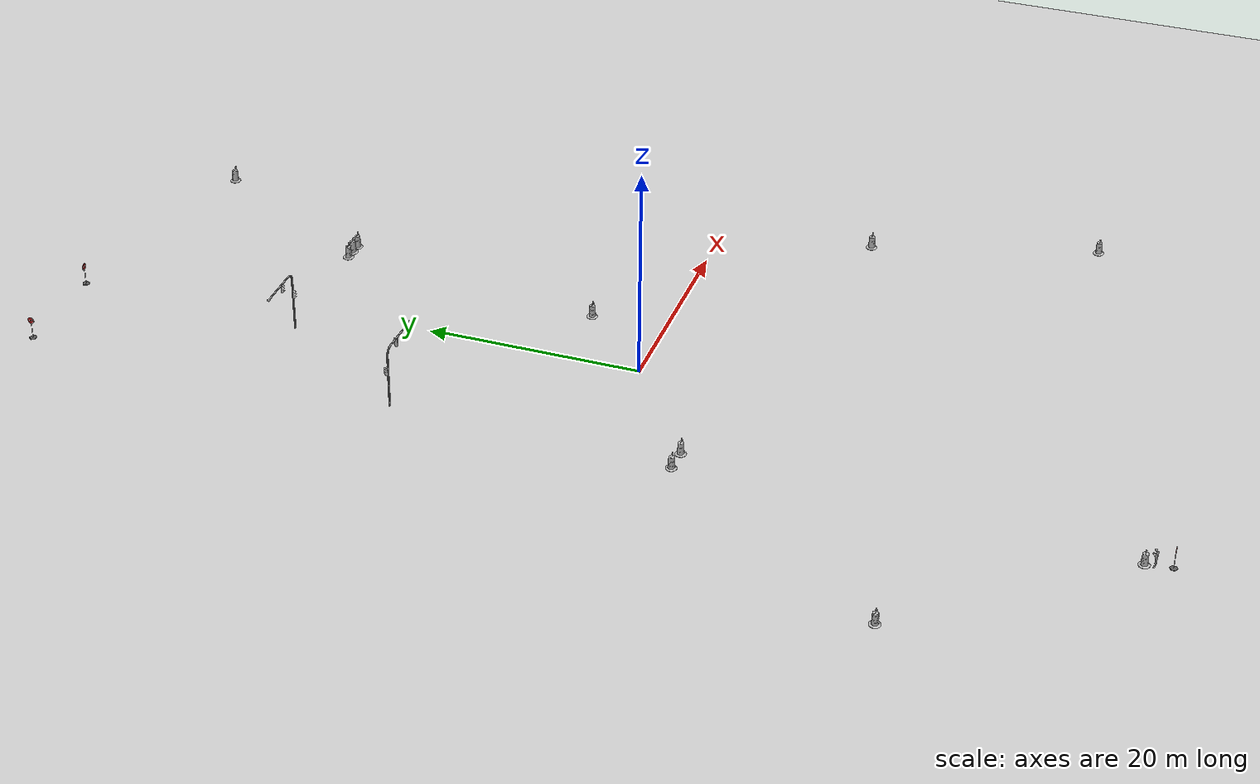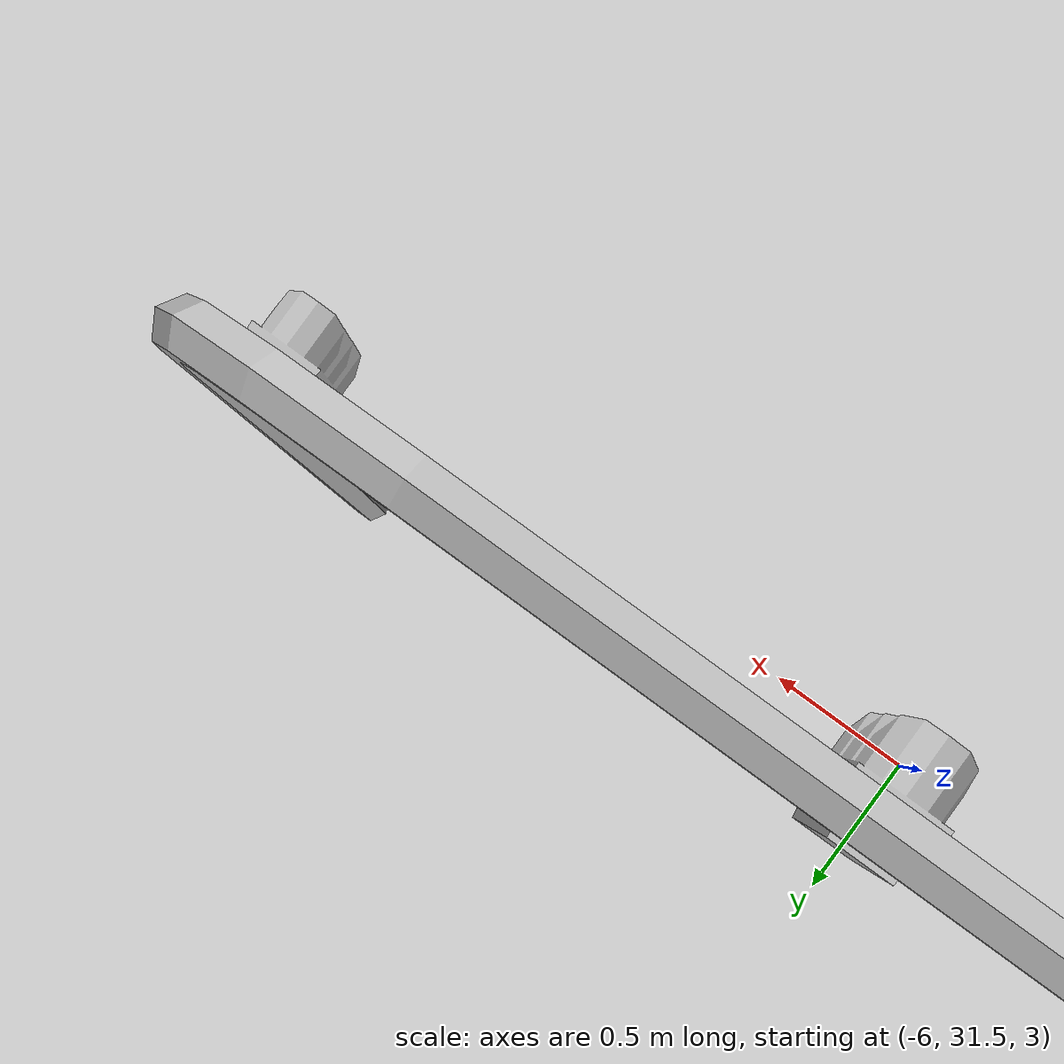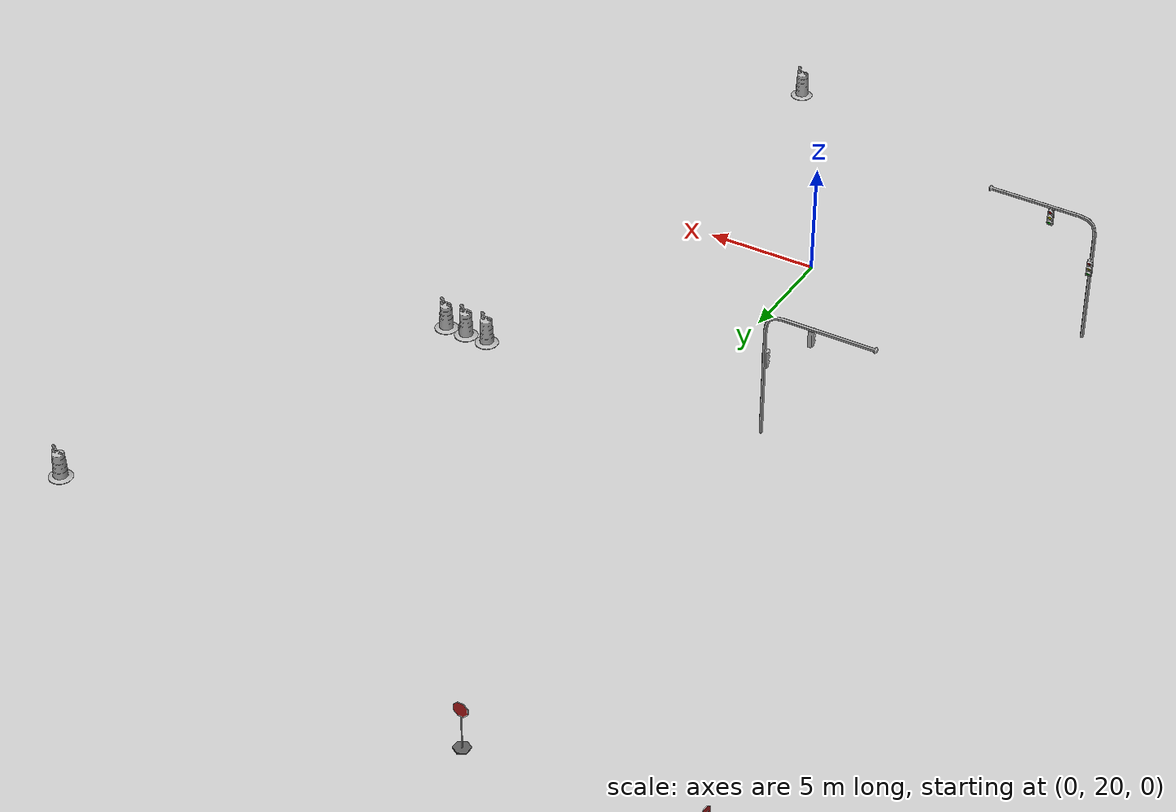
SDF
<sdf version="1.7">
 <world name="self_drive_v1">
  <physics type="ode">
   <max_step_size>0.00625</max_step_size>
   <real_time_factor>1</real_time_factor>
   <real_time_update_rate>160</real_time_update_rate>
  </physics>
  <light name="user_directional_light_0" type="directional">
   <pose>0 -60 1 1 -0 0</pose>
   <diffuse>0.5 0.5 0.5 1</diffuse>
   <specular>0.1 0.1 0.1 1</specular>
   <direction>0.1 0.1 -0.9</direction>
   <attenuation>
    <range>20</range>
    <constant>0.5</constant>
    <linear>0.01</linear>
    <quadratic>0.001</quadratic>
   </attenuation>
   <spot><inner_angle>0</inner_angle><outer_angle>0</outer_angle><falloff>0</falloff></spot>
  </light>
  <light name="user_directional_light_1" type="directional">
   <pose>40 0 1 -1.68478 -0.346199 -2.21355</pose>
   <diffuse>0.5 0.5 0.5 1</diffuse>
   <specular>0.1 0.1 0.1 1</specular>
   <direction>0.1 0.1 -0.9</direction>
   <attenuation>
    <range>20</range>
    <constant>0.5</constant>
    <linear>0.01</linear>
    <quadratic>0.001</quadratic>
   </attenuation>
   <spot><inner_angle>0</inner_angle><outer_angle>0</outer_angle><falloff>0</falloff></spot>
  </light>
  <light name="user_directional_light_2" type="directional">
   <pose>0 68 1 -2.05749 0 0</pose>
   <diffuse>0.5 0.5 0.5 1</diffuse>
   <specular>0.1 0.1 0.1 1</specular>
   <direction>0.1 0.1 -0.9</direction>
   <attenuation>
    <range>20</range>
    <constant>0.5</constant>
    <linear>0.01</linear>
    <quadratic>0.001</quadratic>
   </attenuation>
   <spot><inner_angle>0</inner_angle><outer_angle>0</outer_angle><falloff>0</falloff></spot>
  </light>
  <light name="user_directional_light_3" type="directional">
   <pose>-43 0 1 0 -1.44116 0</pose>
   <diffuse>0.5 0.5 0.5 1</diffuse>
   <specular>0.1 0.1 0.1 1</specular>
   <direction>0.1 0.1 -0.9</direction>
   <attenuation>
    <range>20</range>
    <constant>0.5</constant>
    <linear>0.01</linear>
    <quadratic>0.001</quadratic>
   </attenuation>
   <spot><inner_angle>0</inner_angle><outer_angle>0</outer_angle><falloff>0</falloff></spot>
  </light>
  <scene>
   <sky><clouds><speed>12</speed></clouds></sky>
   <shadows>0</shadows>
   <ambient>0.2 0.2 0.2 1</ambient>
   <background>1 1 1 1</background>
   <grid>0</grid>
   <origin_visual>0</origin_visual>
  </scene>
  <light name="sun" type="directional">
   <pose>0 0 10 0 -0 0</pose>
   <diffuse>0.8 0.8 0.8 1</diffuse>
   <specular>0.2 0.2 0.2 1</specular>
   <attenuation>
    <range>1000</range>
    <constant>0.9</constant>
    <linear>0.01</linear>
    <quadratic>0.001</quadratic>
   </attenuation>
   <direction>-0.5 0.1 -0.9</direction>
   <spot><inner_angle>0</inner_angle><outer_angle>0</outer_angle><falloff>0</falloff></spot>
  </light>
  <model name="igvc_ground">
   <static>1</static>
   <link name="link">
    <collision name="collision">
     <geometry><plane><normal>0 0 1</normal><size>80 128</size></plane></geometry>
     <surface><friction><ode><mu>140</mu><mu2>140</mu2></ode></friction></surface>
    </collision>
    <visual name="visual">
     <cast_shadows>0</cast_shadows>
     <geometry><plane><normal>0 0 1</normal><size>80 128</size></plane></geometry>
     <material>
      <script>
       <uri>model://igvc_ground/materials/scripts</uri>
       <uri>model://igvc_ground/materials/textures</uri>
       <name>asphalt_ground/Image</name>
      </script>
     </material>
    </visual>
   </link>
   <pose>0 0.5 0 0 -0 0</pose>
  </model>
  <gravity>0 0 -9.8</gravity>
  <magnetic_field>6e-06 2.3e-05 -4.2e-05</magnetic_field>
  <atmosphere type="adiabatic"/>
  <audio><device>default</device></audio>
  <spherical_coordinates>
   <surface_model>EARTH_WGS84</surface_model>
   <latitude_deg>0</latitude_deg>
   <longitude_deg>0</longitude_deg>
   <elevation>0</elevation>
   <heading_deg>0</heading_deg>
  </spherical_coordinates>
  <light name="user_spot_light_0" type="spot">
   <pose>13.4886 -23.1413 1 0 -0 0</pose>
   <diffuse>0.5 0.5 0.5 1</diffuse>
   <specular>0.1 0.1 0.1 1</specular>
   <direction>0 0 -1</direction>
   <attenuation>
    <range>20</range>
    <constant>0.5</constant>
    <linear>0.01</linear>
    <quadratic>0.001</quadratic>
   </attenuation>
   <cast_shadows>0</cast_shadows>
   <spot><inner_angle>0.6</inner_angle><outer_angle>1</outer_angle><falloff>1</falloff></spot>
  </light>
  <light name="user_spot_light_1" type="spot">
   <pose>13.6885 -42.0524 1 0 -0 0</pose>
   <diffuse>0.5 0.5 0.5 1</diffuse>
   <specular>0.1 0.1 0.1 1</specular>
   <direction>0 0 -1</direction>
   <attenuation>
    <range>20</range>
    <constant>0.5</constant>
    <linear>0.01</linear>
    <quadratic>0.001</quadratic>
   </attenuation>
   <cast_shadows>0</cast_shadows>
   <spot><inner_angle>0.6</inner_angle><outer_angle>1</outer_angle><falloff>1</falloff></spot>
  </light>
  <light name="user_spot_light_2" type="spot">
   <pose>-30.6538 -41.3002 1 0 -0 0</pose>
   <diffuse>0.5 0.5 0.5 1</diffuse>
   <specular>0.1 0.1 0.1 1</specular>
   <direction>0 0 -1</direction>
   <attenuation>
    <range>20</range>
    <constant>0.5</constant>
    <linear>0.01</linear>
    <quadratic>0.001</quadratic>
   </attenuation>
   <cast_shadows>0</cast_shadows>
   <spot><inner_angle>0.6</inner_angle><outer_angle>1</outer_angle><falloff>1</falloff></spot>
  </light>
  <light name="user_spot_light_3" type="spot">
   <pose>-26.8193 29.1852 1 0 -0 0</pose>
   <diffuse>0.5 0.5 0.5 1</diffuse>
   <specular>0.1 0.1 0.1 1</specular>
   <direction>0 0 -1</direction>
   <attenuation>
    <range>20</range>
    <constant>0.5</constant>
    <linear>0.01</linear>
    <quadratic>0.001</quadratic>
   </attenuation>
   <cast_shadows>0</cast_shadows>
   <spot><inner_angle>0.6</inner_angle><outer_angle>1</outer_angle><falloff>1</falloff></spot>
  </light>
  <light name="user_spot_light_4" type="spot">
   <pose>-30.5626 46.14 1 0 -0 0</pose>
   <diffuse>0.5 0.5 0.5 1</diffuse>
   <specular>0.1 0.1 0.1 1</specular>
   <direction>0 0 -1</direction>
   <attenuation>
    <range>20</range>
    <constant>0.5</constant>
    <linear>0.01</linear>
    <quadratic>0.001</quadratic>
   </attenuation>
   <cast_shadows>0</cast_shadows>
   <spot><inner_angle>0.6</inner_angle><outer_angle>1</outer_angle><falloff>1</falloff></spot>
  </light>
  <light name="user_spot_light_5" type="spot">
   <pose>13.3544 48.592 1 0 -0 0</pose>
   <diffuse>0.5 0.5 0.5 1</diffuse>
   <specular>0.1 0.1 0.1 1</specular>
   <direction>0 0 -1</direction>
   <attenuation>
    <range>20</range>
    <constant>0.5</constant>
    <linear>0.01</linear>
    <quadratic>0.001</quadratic>
   </attenuation>
   <cast_shadows>0</cast_shadows>
   <spot><inner_angle>0.6</inner_angle><outer_angle>1</outer_angle><falloff>1</falloff></spot>
  </light>
  <light name="user_spot_light_6" type="spot">
   <pose>10.0557 6.76251 1 0 -0 0</pose>
   <diffuse>0.5 0.5 0.5 1</diffuse>
   <specular>0.1 0.1 0.1 1</specular>
   <direction>0 0 -1</direction>
   <attenuation>
    <range>20</range>
    <constant>0.5</constant>
    <linear>0.01</linear>
    <quadratic>0.001</quadratic>
   </attenuation>
   <cast_shadows>0</cast_shadows>
   <spot><inner_angle>0.6</inner_angle><outer_angle>1</outer_angle><falloff>1</falloff></spot>
  </light>
  <model name="stop_light_post">
   <static>1</static>
   <link name="link">
    <collision name="post">
     <geometry>
      <mesh><uri>model://stop_light_post/meshes/stop_light_post.obj</uri><scale>0.01 0.01 0.01</scale></mesh>
     </geometry>
    </collision>
    <visual name="post">
     <geometry>
      <mesh><uri>model://stop_light_post/meshes/stop_light_post.obj</uri><scale>0.01 0.01 0.01</scale></mesh>
     </geometry>
    </visual>
   </link>
   <frame name="right_light::__model__" attached_to="right_light::link">
    <pose relative_to="__model__">0 -0.05 4 0 -0 0</pose>
   </frame>
   <static>1</static>
   <link name="right_light::link">
    <collision name="collision">
     <geometry>
      <mesh><uri>model://stop_light/meshes/stop_light.obj</uri><scale>0.01 0.01 0.01</scale></mesh>
     </geometry>
    </collision>
    <visual name="frame">
     <geometry>
      <mesh><uri>model://stop_light/meshes/stop_light.obj</uri><scale>0.01 0.01 0.01</scale></mesh>
     </geometry>
    </visual>
    <visual name="red">
     <pose>-0.001123 -0.082251 -0.147514 0 -0 0</pose>
     <geometry><sphere><radius>0.1012</radius></sphere></geometry>
     <material>
      <script>
       <uri>model://stop_light/materials/scripts/</uri>
       <uri>model://stop_light/materials/textures/</uri>
       <name>StopLight/Light</name>
      </script>
      <ambient>1 0 0 1</ambient>
      <specular>1 0 0 1</specular>
     </material>
    </visual>
    <visual name="yellow">
     <pose>-0.001123 -0.082251 -0.402 0 -0 0</pose>
     <geometry><sphere><radius>0.1012</radius></sphere></geometry>
     <material>
      <script>
       <uri>model://stop_light/materials/scripts/</uri>
       <uri>model://stop_light/materials/textures/</uri>
       <name>StopLight/Light</name>
      </script>
      <ambient>1 1 0 1</ambient>
      <specular>1 1 0 1</specular>
     </material>
    </visual>
    <visual name="green">
     <pose>-0.001123 -0.082251 -0.655 0 -0 0</pose>
     <geometry><sphere><radius>0.1012</radius></sphere></geometry>
     <material>
      <script>
       <uri>model://stop_light/materials/scripts/</uri>
       <uri>model://stop_light/materials/textures/</uri>
       <name>StopLight/Light</name>
      </script>
      <ambient>0 1 0 1</ambient>
      <specular>0 1 0 1</specular>
     </material>
    </visual>
    <pose relative_to="right_light::__model__">0 0 0 0 -0 0</pose>
   </link>
   <frame name="center_light::__model__" attached_to="center_light::link">
    <pose relative_to="__model__">-2 0.04 5.82 0 -0 0</pose>
   </frame>
   <static>1</static>
   <link name="center_light::link">
    <collision name="collision">
     <geometry>
      <mesh><uri>model://stop_light/meshes/stop_light.obj</uri><scale>0.01 0.01 0.01</scale></mesh>
     </geometry>
    </collision>
    <visual name="frame">
     <geometry>
      <mesh><uri>model://stop_light/meshes/stop_light.obj</uri><scale>0.01 0.01 0.01</scale></mesh>
     </geometry>
    </visual>
    <visual name="red">
     <pose>-0.001123 -0.082251 -0.147514 0 -0 0</pose>
     <geometry><sphere><radius>0.1012</radius></sphere></geometry>
     <material>
      <script>
       <uri>model://stop_light/materials/scripts/</uri>
       <uri>model://stop_light/materials/textures/</uri>
       <name>StopLight/Light</name>
      </script>
      <ambient>1 0 0 1</ambient>
      <specular>1 0 0 1</specular>
     </material>
    </visual>
    <visual name="yellow">
     <pose>-0.001123 -0.082251 -0.402 0 -0 0</pose>
     <geometry><sphere><radius>0.1012</radius></sphere></geometry>
     <material>
      <script>
       <uri>model://stop_light/materials/scripts/</uri>
       <uri>model://stop_light/materials/textures/</uri>
       <name>StopLight/Light</name>
      </script>
      <ambient>1 1 0 1</ambient>
      <specular>1 1 0 1</specular>
     </material>
    </visual>
    <visual name="green">
     <pose>-0.001123 -0.082251 -0.655 0 -0 0</pose>
     <geometry><sphere><radius>0.1012</radius></sphere></geometry>
     <material>
      <script>
       <uri>model://stop_light/materials/scripts/</uri>
       <uri>model://stop_light/materials/textures/</uri>
       <name>StopLight/Light</name>
      </script>
      <ambient>0 1 0 1</ambient>
      <specular>0 1 0 1</specular>
     </material>
    </visual>
    <pose relative_to="center_light::__model__">0 0 0 0 -0 0</pose>
   </link>
   <pose>-3.66889 31.7915 0 0 -0 0</pose>
  </model>
  <model name="stop_light_post_0">
   <static>1</static>
   <link name="link">
    <collision name="post">
     <geometry>
      <mesh><uri>model://stop_light_post/meshes/stop_light_post.obj</uri><scale>0.01 0.01 0.01</scale></mesh>
     </geometry>
    </collision>
    <visual name="post">
     <geometry>
      <mesh><uri>model://stop_light_post/meshes/stop_light_post.obj</uri><scale>0.01 0.01 0.01</scale></mesh>
     </geometry>
    </visual>
   </link>
   <frame name="right_light::__model__" attached_to="right_light::link">
    <pose relative_to="__model__">0 -0.05 4 0 -0 0</pose>
   </frame>
   <static>1</static>
   <link name="right_light::link">
    <collision name="collision">
     <geometry>
      <mesh><uri>model://stop_light/meshes/stop_light.obj</uri><scale>0.01 0.01 0.01</scale></mesh>
     </geometry>
    </collision>
    <visual name="frame">
     <geometry>
      <mesh><uri>model://stop_light/meshes/stop_light.obj</uri><scale>0.01 0.01 0.01</scale></mesh>
     </geometry>
    </visual>
    <visual name="red">
     <pose>-0.001123 -0.082251 -0.147514 0 -0 0</pose>
     <geometry><sphere><radius>0.1012</radius></sphere></geometry>
     <material>
      <script>
       <uri>model://stop_light/materials/scripts/</uri>
       <uri>model://stop_light/materials/textures/</uri>
       <name>StopLight/Light</name>
      </script>
      <ambient>1 0 0 1</ambient>
      <specular>1 0 0 1</specular>
     </material>
    </visual>
    <visual name="yellow">
     <pose>-0.001123 -0.082251 -0.402 0 -0 0</pose>
     <geometry><sphere><radius>0.1012</radius></sphere></geometry>
     <material>
      <script>
       <uri>model://stop_light/materials/scripts/</uri>
       <uri>model://stop_light/materials/textures/</uri>
       <name>StopLight/Light</name>
      </script>
      <ambient>1 1 0 1</ambient>
      <specular>1 1 0 1</specular>
     </material>
    </visual>
    <visual name="green">
     <pose>-0.001123 -0.082251 -0.655 0 -0 0</pose>
     <geometry><sphere><radius>0.1012</radius></sphere></geometry>
     <material>
      <script>
       <uri>model://stop_light/materials/scripts/</uri>
       <uri>model://stop_light/materials/textures/</uri>
       <name>StopLight/Light</name>
      </script>
      <ambient>0 1 0 1</ambient>
      <specular>0 1 0 1</specular>
     </material>
    </visual>
    <pose relative_to="right_light::__model__">0 0 0 0 -0 0</pose>
   </link>
   <frame name="center_light::__model__" attached_to="center_light::link">
    <pose relative_to="__model__">-2 0.04 5.82 0 -0 0</pose>
   </frame>
   <static>1</static>
   <link name="center_light::link">
    <collision name="collision">
     <geometry>
      <mesh><uri>model://stop_light/meshes/stop_light.obj</uri><scale>0.01 0.01 0.01</scale></mesh>
     </geometry>
    </collision>
    <visual name="frame">
     <geometry>
      <mesh><uri>model://stop_light/meshes/stop_light.obj</uri><scale>0.01 0.01 0.01</scale></mesh>
     </geometry>
    </visual>
    <visual name="red">
     <pose>-0.001123 -0.082251 -0.147514 0 -0 0</pose>
     <geometry><sphere><radius>0.1012</radius></sphere></geometry>
     <material>
      <script>
       <uri>model://stop_light/materials/scripts/</uri>
       <uri>model://stop_light/materials/textures/</uri>
       <name>StopLight/Light</name>
      </script>
      <ambient>1 0 0 1</ambient>
      <specular>1 0 0 1</specular>
     </material>
    </visual>
    <visual name="yellow">
     <pose>-0.001123 -0.082251 -0.402 0 -0 0</pose>
     <geometry><sphere><radius>0.1012</radius></sphere></geometry>
     <material>
      <script>
       <uri>model://stop_light/materials/scripts/</uri>
       <uri>model://stop_light/materials/textures/</uri>
       <name>StopLight/Light</name>
      </script>
      <ambient>1 1 0 1</ambient>
      <specular>1 1 0 1</specular>
     </material>
    </visual>
    <visual name="green">
     <pose>-0.001123 -0.082251 -0.655 0 -0 0</pose>
     <geometry><sphere><radius>0.1012</radius></sphere></geometry>
     <material>
      <script>
       <uri>model://stop_light/materials/scripts/</uri>
       <uri>model://stop_light/materials/textures/</uri>
       <name>StopLight/Light</name>
      </script>
      <ambient>0 1 0 1</ambient>
      <specular>0 1 0 1</specular>
     </material>
    </visual>
    <pose relative_to="center_light::__model__">0 0 0 0 -0 0</pose>
   </link>
   <pose>-12.2725 18.8255 0 0 -0 3.11833</pose>
  </model>
  <model name="Construction Barrel">
   <link name="link">
    <inertial>
     <pose>0 0 0.4 0 -0 0</pose>
     <mass>500</mass>
     <inertia><ixx>51.2096</ixx><iyy>51.2096</iyy><izz>25</izz><ixy>0</ixy><ixz>0</ixz><iyz>0</iyz></inertia>
    </inertial>
    <collision name="collision">
     <geometry><mesh><uri>model://construction_barrel/meshes/construction_barrel.dae</uri></mesh></geometry>
    </collision>
    <visual name="visual">
     <geometry><mesh><uri>model://construction_barrel/meshes/construction_barrel.dae</uri></mesh></geometry>
    </visual>
   </link>
   <pose>-10.5844 -7.26208 -0 0 0 -0.000616</pose>
  </model>
  <light name="user_spot_light_7" type="spot">
   <pose>-6.22759 -26.5049 1 0 -0 0</pose>
   <diffuse>0.5 0.5 0.5 1</diffuse>
   <specular>0.1 0.1 0.1 1</specular>
   <direction>0 0 -1</direction>
   <attenuation>
    <range>20</range>
    <constant>0.5</constant>
    <linear>0.01</linear>
    <quadratic>0.001</quadratic>
   </attenuation>
   <cast_shadows>0</cast_shadows>
   <spot><inner_angle>0.6</inner_angle><outer_angle>1</outer_angle><falloff>1</falloff></spot>
  </light>
  <model name="sign_stop">
   <static>1</static>
   <link name="sign">
    <visual name="visual">
     <geometry>
      <mesh><uri>model://sign_stop/materials/meshes/sign_stop.dae</uri><scale>0.001 0.001 0.001</scale></mesh>
     </geometry>
    </visual>
    <collision name="collision">
     <geometry>
      <mesh><uri>model://sign_stop/materials/meshes/sign_stop.dae</uri><scale>0.001 0.001 0.001</scale></mesh>
     </geometry>
    </collision>
   </link>
   <pose>-12.5133 -49.3991 0 0 -0 3.13007</pose>
  </model>
  <model name="Construction Barrel_0">
   <link name="link">
    <inertial>
     <pose>0 0 0.4 0 -0 0</pose>
     <mass>500</mass>
     <inertia><ixx>51.2096</ixx><iyy>51.2096</iyy><izz>25</izz><ixy>0</ixy><ixz>0</ixz><iyz>0</iyz></inertia>
    </inertial>
    <collision name="collision">
     <geometry><mesh><uri>model://construction_barrel/meshes/construction_barrel.dae</uri></mesh></geometry>
    </collision>
    <visual name="visual">
     <geometry><mesh><uri>model://construction_barrel/meshes/construction_barrel.dae</uri></mesh></geometry>
    </visual>
   </link>
   <pose>-12.6105 -46.9378 -0 0 -0 -0.000526</pose>
  </model>
  <model name="MaleVisitorOnPhone">
   <static>1</static>
   <link name="body">
    <visual name="visual">
     <geometry><mesh><uri>model://MaleVisitorOnPhone/meshes/MaleVisitorStatic.obj</uri></mesh></geometry>
    </visual>
    <collision name="collision">
     <geometry><mesh><uri>model://MaleVisitorOnPhone/meshes/MaleVisitorStatic_Col.obj</uri></mesh></geometry>
    </collision>
   </link>
   <pose>-12.5847 -47.8107 0 0 -0 1.52445</pose>
  </model>
  <model name="Construction Barrel_1">
   <link name="link">
    <inertial>
     <pose>0 0 0.4 0 -0 0</pose>
     <mass>500</mass>
     <inertia><ixx>51.2096</ixx><iyy>51.2096</iyy><izz>25</izz><ixy>0</ixy><ixz>0</ixz><iyz>0</iyz></inertia>
    </inertial>
    <collision name="collision">
     <geometry><mesh><uri>model://construction_barrel/meshes/construction_barrel.dae</uri></mesh></geometry>
    </collision>
    <visual name="visual">
     <geometry><mesh><uri>model://construction_barrel/meshes/construction_barrel.dae</uri></mesh></geometry>
    </visual>
   </link>
   <pose>-27.1232 -28.4393 -0 0 0 -0.000454</pose>
  </model>
  <model name="sign_stop_0">
   <static>1</static>
   <link name="sign">
    <visual name="visual">
     <geometry>
      <mesh><uri>model://sign_igvc/materials/meshes/sign_igvc.dae</uri><scale>0.001 0.001 0.001</scale></mesh>
     </geometry>
    </visual>
    <collision name="collision">
     <geometry>
      <mesh><uri>model://sign_igvc/materials/meshes/sign_igvc.dae</uri><scale>0.001 0.001 0.001</scale></mesh>
     </geometry>
    </collision>
   </link>
   <pose>-12.8864 53.2139 0 0 0 -1.64895</pose>
  </model>
  <model name="sign_stop_1">
   <static>1</static>
   <link name="sign">
    <visual name="visual">
     <geometry>
      <mesh><uri>model://sign_soup/materials/meshes/sign_soup.dae</uri><scale>0.001 0.001 0.001</scale></mesh>
     </geometry>
    </visual>
    <collision name="collision">
     <geometry>
      <mesh><uri>model://sign_soup/materials/meshes/sign_soup.dae</uri><scale>0.001 0.001 0.001</scale></mesh>
     </geometry>
    </collision>
   </link>
   <pose>-2.91865 53.6126 0 0 -0 0</pose>
  </model>
  <model name="Construction Barrel_2">
   <link name="link">
    <inertial>
     <pose>0 0 0.4 0 -0 0</pose>
     <mass>500</mass>
     <inertia><ixx>51.2096</ixx><iyy>51.2096</iyy><izz>25</izz><ixy>0</ixy><ixz>0</ixz><iyz>0</iyz></inertia>
    </inertial>
    <collision name="collision">
     <geometry><mesh><uri>model://construction_barrel/meshes/construction_barrel.dae</uri></mesh></geometry>
    </collision>
    <visual name="visual">
     <geometry><mesh><uri>model://construction_barrel/meshes/construction_barrel.dae</uri></mesh></geometry>
    </visual>
   </link>
   <pose>11.3163 32.1494 -4.6e-05 9e-06 0.000177 0.00833</pose>
  </model>
  <model name="Construction Barrel_3">
   <link name="link">
    <inertial>
     <pose>0 0 0.4 0 -0 0</pose>
     <mass>500</mass>
     <inertia><ixx>51.2096</ixx><iyy>51.2096</iyy><izz>25</izz><ixy>0</ixy><ixz>0</ixz><iyz>0</iyz></inertia>
    </inertial>
    <collision name="collision">
     <geometry><mesh><uri>model://construction_barrel/meshes/construction_barrel.dae</uri></mesh></geometry>
    </collision>
    <visual name="visual">
     <geometry><mesh><uri>model://construction_barrel/meshes/construction_barrel.dae</uri></mesh></geometry>
    </visual>
   </link>
   <pose>18.8707 48.6428 -0 0 -0 -0.000311</pose>
  </model>
  <model name="Construction Barrel_4">
   <link name="link">
    <inertial>
     <pose>0 0 0.4 0 -0 0</pose>
     <mass>500</mass>
     <inertia><ixx>51.2096</ixx><iyy>51.2096</iyy><izz>25</izz><ixy>0</ixy><ixz>0</ixz><iyz>0</iyz></inertia>
    </inertial>
    <collision name="collision">
     <geometry><mesh><uri>model://construction_barrel/meshes/construction_barrel.dae</uri></mesh></geometry>
    </collision>
    <visual name="visual">
     <geometry><mesh><uri>model://construction_barrel/meshes/construction_barrel.dae</uri></mesh></geometry>
    </visual>
   </link>
   <pose>7.23943 6.96114 -0 0 -0 -0.000294</pose>
  </model>
  <model name="Construction Barrel_5">
   <link name="link">
    <inertial>
     <pose>0 0 0.4 0 -0 0</pose>
     <mass>500</mass>
     <inertia><ixx>51.2096</ixx><iyy>51.2096</iyy><izz>25</izz><ixy>0</ixy><ixz>0</ixz><iyz>0</iyz></inertia>
    </inertial>
    <collision name="collision">
     <geometry><mesh><uri>model://construction_barrel/meshes/construction_barrel.dae</uri></mesh></geometry>
    </collision>
    <visual name="visual">
     <geometry><mesh><uri>model://construction_barrel/meshes/construction_barrel.dae</uri></mesh></geometry>
    </visual>
   </link>
   <pose>-12.787 -7.14149 -0 0 -0 -0.000277</pose>
  </model>
  <model name="Construction Barrel_6">
   <link name="link">
    <inertial>
     <pose>0 0 0.4 0 -0 0</pose>
     <mass>500</mass>
     <inertia><ixx>51.2096</ixx><iyy>51.2096</iyy><izz>25</izz><ixy>0</ixy><ixz>0</ixz><iyz>0</iyz></inertia>
    </inertial>
    <collision name="collision">
     <geometry><mesh><uri>model://construction_barrel/meshes/construction_barrel.dae</uri></mesh></geometry>
    </collision>
    <visual name="visual">
     <geometry><mesh><uri>model://construction_barrel/meshes/construction_barrel.dae</uri></mesh></geometry>
    </visual>
   </link>
   <pose>10.3009 32.1755 -0 0 -0 0.013801</pose>
  </model>
  <model name="Construction Barrel_7">
   <link name="link">
    <inertial>
     <pose>0 0 0.4 0 -0 0</pose>
     <mass>500</mass>
     <inertia><ixx>51.2096</ixx><iyy>51.2096</iyy><izz>25</izz><ixy>0</ixy><ixz>0</ixz><iyz>0</iyz></inertia>
    </inertial>
    <collision name="collision">
     <geometry><mesh><uri>model://construction_barrel/meshes/construction_barrel.dae</uri></mesh></geometry>
    </collision>
    <visual name="visual">
     <geometry><mesh><uri>model://construction_barrel/meshes/construction_barrel.dae</uri></mesh></geometry>
    </visual>
   </link>
   <pose>9.25261 32.1906 -0 0 -0 -0.00021</pose>
  </model>
  <model name="Construction Barrel_8">
   <link name="link">
    <inertial>
     <pose>0 0 0.4 0 -0 0</pose>
     <mass>500</mass>
     <inertia><ixx>51.2096</ixx><iyy>51.2096</iyy><izz>25</izz><ixy>0</ixy><ixz>0</ixz><iyz>0</iyz></inertia>
    </inertial>
    <collision name="collision">
     <geometry><mesh><uri>model://construction_barrel/meshes/construction_barrel.dae</uri></mesh></geometry>
    </collision>
    <visual name="visual">
     <geometry><mesh><uri>model://construction_barrel/meshes/construction_barrel.dae</uri></mesh></geometry>
    </visual>
   </link>
   <pose>27.6332 -14.1154 -0 0 -0 -0.000143</pose>
  </model>
  <model name="Construction Barrel_9">
   <link name="link">
    <inertial>
     <pose>0 0 0.4 0 -0 0</pose>
     <mass>500</mass>
     <inertia><ixx>51.2096</ixx><iyy>51.2096</iyy><izz>25</izz><ixy>0</ixy><ixz>0</ixz><iyz>0</iyz></inertia>
    </inertial>
    <collision name="collision">
     <geometry><mesh><uri>model://construction_barrel/meshes/construction_barrel.dae</uri></mesh></geometry>
    </collision>
    <visual name="visual">
     <geometry><mesh><uri>model://construction_barrel/meshes/construction_barrel.dae</uri></mesh></geometry>
    </visual>
   </link>
   <pose>33.8417 -34.7187 -4.6e-05 9e-06 0.000177 -3.7e-05</pose>
  </model>
 </world>
</sdf>
